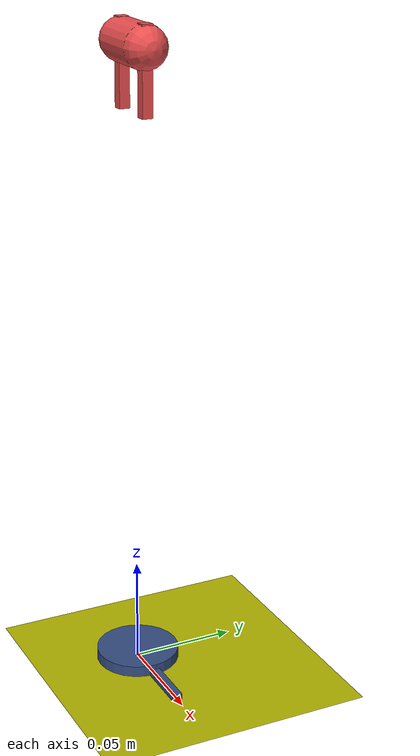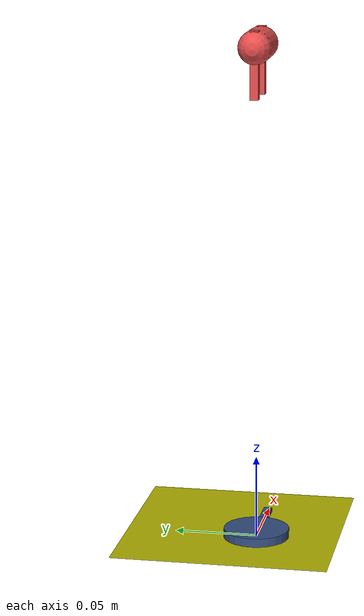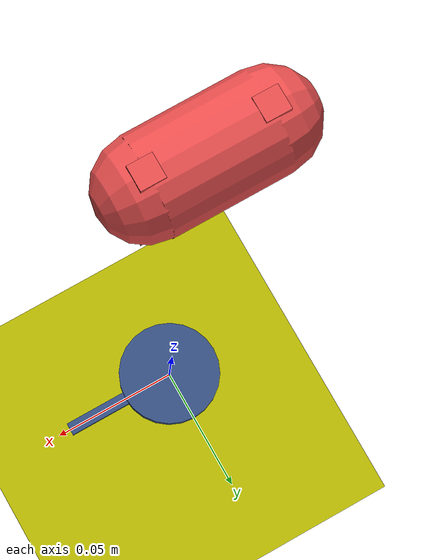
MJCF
<mujoco model="reacher">
	<compiler inertiafromgeom="true" angle="radian" coordinate="local" texturedir="textures" meshdir="stl_files"/>
	<option timestep="0.01" gravity="0 0 -9.81" integrator="RK4"/>
	<default >
		<joint limited="true" armature="1" damping="1"/>
		<geom friction="1.2 1.0 1.0" contype="0" rgba="0.7 0.7 0 1"/>
	</default>
	<worldbody >
		<light pos="0 0 1.3" cutoff="100" diffuse="1 1 1" dir="-0 0 -1.3" exponent="1" specular=".1 .1 .1" directional="true"/>
		<geom pos="0 0 0" contype="1" name="table" size="1 1 0.1" conaffinity="1" friction="0.1 0 0.0" type="plane" material="table_material"/>
		<body pos="0 0 0.3" name="gripper">
			<geom contype="0" name="link0" rgba="0.9 0.3 0.3 1" size="0.01" conaffinity="0" type="capsule" fromto="-0.012 0 0 0.012 0 0"/>
			<joint axis="1 0 0" type="slide" pos="0 0 0" name="joint_x" limited="false"/>
			<joint axis="0 1 0" type="slide" pos="0 0 0" name="joint_y" limited="false"/>
			<joint axis="0 0 1" type="slide" pos="0 0 0" name="joint_z" limited="false"/>
			<joint pos="0 0 0" name="gripper_hinge_z" armature="0" damping="0.0001" axis="0 0 1" type="hinge" limited="false" stiffness="0"/>
			<body pos="-0.012 0 -0.01" name="fingertip1">
				<joint pos="0 0 0" range="0 0.024" name="joint_tip" axis="1 0 0" type="slide" limited="true"/>
				<geom contype="1" name="ft1" rgba="0.9 0.3 0.3 1" size="0.0025 0.0025 0.02" conaffinity="1" type="box" friction="2 0.010 0.0002"/>
			</body>
			<body pos="0.012 0 -0.01" name="fingertip2">
				<geom contype="1" name="ft2" rgba="0.9 0.3 0.3 1" size="0.0025 0.0025 0.02" conaffinity="1" type="box" friction="2 0.010 0.0002"/>
			</body>
		</body>
		<body pos="0 0 0" name="target">
			<geom user="1" pos="0 0 0" contype="1" name="target" rgba="0.2 0.3 0.5 1" size="0.02 0.005" conaffinity="1" type="cylinder" friction="2 0.010 0.0002"/>
			<joint pos="0 0 0" name="target_x" armature="0" damping="0" axis="1 0 0" type="slide" limited="false" stiffness="0"/>
			<joint pos="0 0 0" name="target_y" armature="0" damping="0" axis="0 1 0" type="slide" limited="false" stiffness="0"/>
			<joint pos="0 0 0" name="target_z" armature="0" damping="0" axis="0 0 1" type="slide" limited="false" stiffness="0"/>
			<joint pos="0 0 0" name="target_hinge_z" armature="0" damping="0" axis="0 0 1" type="hinge" limited="false" stiffness="0"/>
			<body pos="0 0 0" name="handle">
				<geom user="1" pos="0.025 0 0" contype="1" name="handle" rgba="0.2 0.3 0.5 1" size="0.02 0.0025 0.0025" conaffinity="1" type="box" friction="2 0.010 0.0002"/>
			</body>
		</body>
	</worldbody>
	<actuator >
		<position joint="joint_x" kp="2" ctrllimited="false"/>
		<position joint="joint_y" kp="2" ctrllimited="false"/>
		<position joint="joint_z" kp="3" ctrllimited="false"/>
		<velocity joint="joint_z" kv="0.5" ctrllimited="false"/>
		<motor joint="joint_tip" ctrlrange="-5.0 5.0" ctrllimited="true"/>
	</actuator>
	<asset >
        <texture type="2d" file="/home/dineshj/Documents/Codes/lowcostgrasp/simulator/assets/wood-texture/pic_011.png" name="table_texture"/>
		<material texrepeat="10 10" texture="table_texture" shininess="0.1" specular="0.4" name="table_material"/>
	</asset>
</mujoco>
